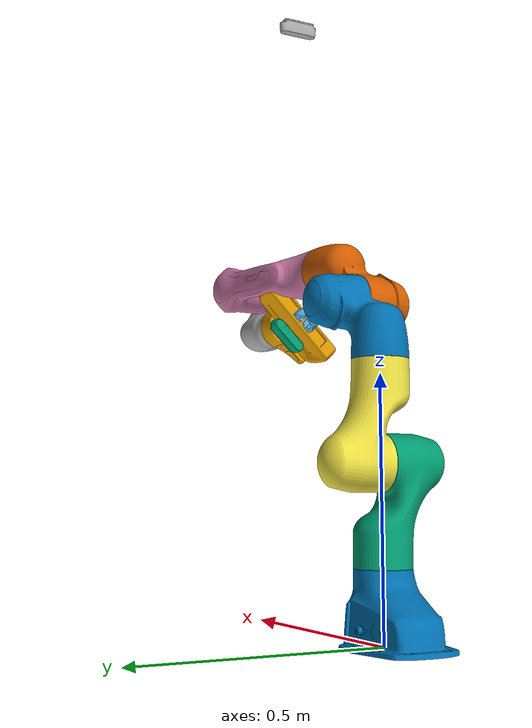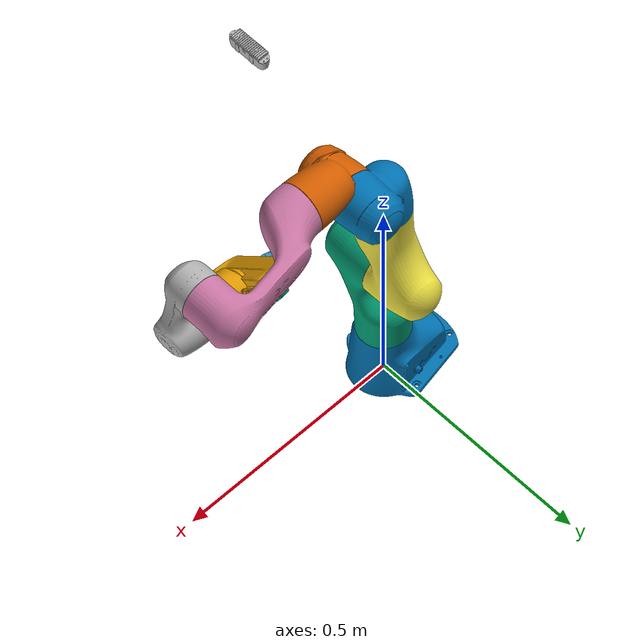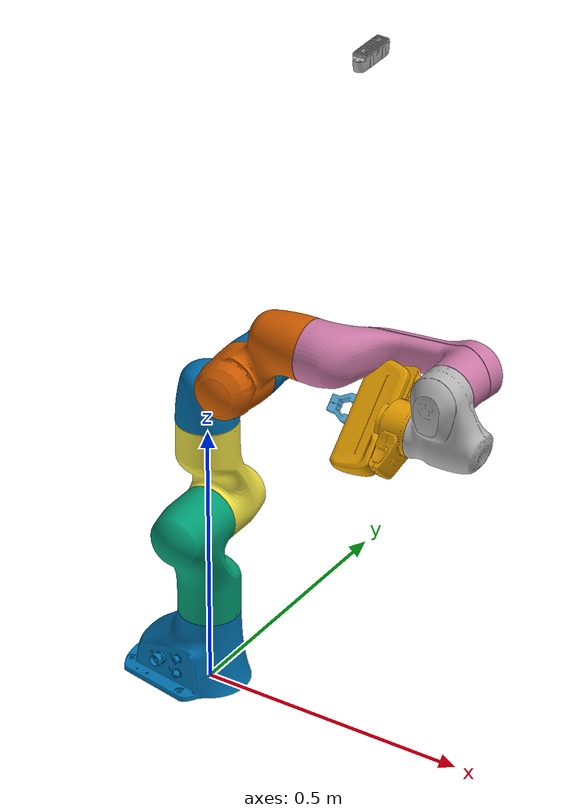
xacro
<?xml version="1.0"?>
<robot xmlns:xacro="http://www.ros.org/wiki/xacro" name="Franka">
    <xacro:arg name="initial_positions_file" default="initial_positions.yaml" />

    <!-- Import Franka urdf file -->
    <xacro:include filename="$(find panda_description)/urdf/Franka.urdf" />

    <!-- Import control_xacro -->
    <xacro:include filename="Franka.ros2_control.xacro" />

    <xacro:Franka_ros2_control name="FakeSystem" initial_positions_file="$(arg initial_positions_file)"/>

</robot>

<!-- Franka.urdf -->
<robot name="Franka">
  <joint name="PandaHandJoint" type="fixed">
    <origin xyz="0.0449043 -0.0000857 0.046555 " rpy="0. 0. -1.553343"/>
    <parent link="Franka_panda_hand"/>
    <child link="Gemini2_hand"/>
  </joint>
  <joint name="joint_Gemini2_hand-Gemini2_hand_Orbbec_Gemini2_camera_ir_left_camera_left_gemini_hand_depth" type="fixed">
    <origin xyz="-0.025 -0. 0.0061398" rpy="3.1415927 0. -3.1415927"/>
    <parent link="Gemini2_hand"/>
    <child link="Gemini2_hand_Orbbec_Gemini2_camera_ir_left_camera_left_gemini_hand_depth"/>
  </joint>
  <joint name="joint_Gemini2_hand-Gemini2_hand_Orbbec_Gemini2_camera_ir_left_camera_left_gemini_hand_rgb" type="fixed">
    <origin xyz="-0.025 -0. 0.0061398" rpy="3.1415927 0. -3.1415927"/>
    <parent link="Gemini2_hand"/>
    <child link="Gemini2_hand_Orbbec_Gemini2_camera_ir_left_camera_left_gemini_hand_rgb"/>
  </joint>
  <joint name="joint_Gemini2_hand-Gemini2_hand_Orbbec_Gemini2_camera_ir_right_camera_right_Stream_ir_right" type="fixed">
    <origin xyz="0.025 -0.0000001 0.0061398" rpy="3.1415927 0. -3.1415927"/>
    <parent link="Gemini2_hand"/>
    <child link="Gemini2_hand_Orbbec_Gemini2_camera_ir_right_camera_right_Stream_ir_right"/>
  </joint>
  <joint name="joint_Gemini2_hand-Gemini2_hand_Orbbec_Gemini2_camera_rgb_camera_rgb_Stream_rgb" type="fixed">
    <origin xyz="0.010989 -0.0000076 0.0076121" rpy="3.1415927 0. -3.1415927"/>
    <parent link="Gemini2_hand"/>
    <child link="Gemini2_hand_Orbbec_Gemini2_camera_rgb_camera_rgb_Stream_rgb"/>
  </joint>
  <joint name="joint_Gemini2_world-Gemini2_world_Orbbec_Gemini2_camera_ir_left_camera_left_Stream_depth" type="fixed">
    <origin xyz="-0.025 0. 0.0061398" rpy="-3.1415927 0. -3.1415927"/>
    <parent link="Gemini2_world"/>
    <child link="Gemini2_world_Orbbec_Gemini2_camera_ir_left_camera_left_Stream_depth"/>
  </joint>
  <joint name="joint_Gemini2_world-Gemini2_world_Orbbec_Gemini2_camera_ir_left_camera_left_Stream_ir_left" type="fixed">
    <origin xyz="-0.025 0. 0.0061398" rpy="-3.1415927 0. 3.1415927"/>
    <parent link="Gemini2_world"/>
    <child link="Gemini2_world_Orbbec_Gemini2_camera_ir_left_camera_left_Stream_ir_left"/>
  </joint>
  <joint name="joint_Gemini2_world-Gemini2_world_Orbbec_Gemini2_camera_ir_right_camera_right_Stream_ir_right" type="fixed">
    <origin xyz="0.025 -0.0000001 0.0061398" rpy="-3.1415927 0. -3.1415927"/>
    <parent link="Gemini2_world"/>
    <child link="Gemini2_world_Orbbec_Gemini2_camera_ir_right_camera_right_Stream_ir_right"/>
  </joint>
  <joint name="joint_Gemini2_world-Gemini2_world_Orbbec_Gemini2_camera_rgb_camera_rgb_Stream_rgb" type="fixed">
    <origin xyz="0.010989 -0.0000076 0.0076121" rpy="-3.1415927 0. -3.1415927"/>
    <parent link="Gemini2_world"/>
    <child link="Gemini2_world_Orbbec_Gemini2_camera_rgb_camera_rgb_Stream_rgb"/>
  </joint>
  <joint name="panda_finger_joint1" type="prismatic">
    <origin xyz="0. -0. 0.0584" rpy="0. -0. 1.5707963"/>
    <parent link="Franka_panda_hand"/>
    <child link="Franka_panda_leftfinger"/>
    <axis xyz="1. 0. 0."/>
    <limit lower="0." upper="0.04" effort="7.1999998" velocity="10."/>
  </joint>
  <joint name="panda_finger_joint2" type="prismatic">
    <origin xyz="0. -0. 0.0584" rpy="-0. 0. -1.5707964"/>
    <parent link="Franka_panda_hand"/>
    <child link="Franka_panda_rightfinger"/>
    <axis xyz="1. 0. 0."/>
    <limit lower="0." upper="0.04" effort="0." velocity="10."/>
  </joint>
  <joint name="panda_hand_joint" type="fixed">
    <origin xyz="-0.0000001 -0.0000001 0. " rpy="1.5707964 -0.7853981 -1.5707964"/>
    <parent link="panda_link8"/>
    <child link="Franka_panda_hand"/>
  </joint>
  <joint name="panda_joint1" type="revolute">
    <origin xyz="-0. 0. 0.333" rpy="0. -1.5707963 0. "/>
    <parent link="Root"/>
    <child link="Franka_panda_link1"/>
    <axis xyz="1. 0. 0."/>
    <limit lower="-2.8973001" upper="2.8973001" effort="100000." velocity="10.0000005"/>
  </joint>
  <joint name="panda_joint2" type="revolute">
    <origin xyz="0.0000003 0.0000001 -0. " rpy="0. 0. 1.5707964"/>
    <parent link="Franka_panda_link1"/>
    <child link="Franka_panda_link2"/>
    <axis xyz="1. 0. 0."/>
    <limit lower="-1.7628" upper="1.7628" effort="100000." velocity="10.0000005"/>
  </joint>
  <joint name="panda_joint3" type="revolute">
    <origin xyz="-0.0000001 -0.3159997 0. " rpy="-0.0000002 -0.0000002 -1.5707958"/>
    <parent link="Franka_panda_link2"/>
    <child link="Franka_panda_link3"/>
    <axis xyz="1. 0. 0."/>
    <limit lower="-2.8973001" upper="2.8973001" effort="100000." velocity="10.0000005"/>
  </joint>
  <joint name="panda_joint4" type="revolute">
    <origin xyz="-0. -0.0000001 -0.0824999" rpy="-0.0000002 0.0000002 -1.5707968"/>
    <parent link="Franka_panda_link3"/>
    <child link="Franka_panda_link4"/>
    <axis xyz="1. 0. 0."/>
    <limit lower="-3.0718" upper="-0.0698" effort="100000." velocity="10.0000005"/>
  </joint>
  <joint name="panda_joint5" type="revolute">
    <origin xyz="0.0000005 0.3839998 0.0824996" rpy="-0.0000003 0.0000001 1.5707946"/>
    <parent link="Franka_panda_link4"/>
    <child link="Franka_panda_link5"/>
    <axis xyz="1. 0. 0."/>
    <limit lower="-2.8973001" upper="2.8973001" effort="100000." velocity="10.0000005"/>
  </joint>
  <joint name="panda_joint6" type="revolute">
    <origin xyz="0.0000005 0.0000003 0.0000002" rpy="0.0000001 0.0000003 -1.5707946"/>
    <parent link="Franka_panda_link5"/>
    <child link="Franka_panda_link6"/>
    <axis xyz="1. 0. 0."/>
    <limit lower="-0.0175" upper="3.7525" effort="100000." velocity="10.0000005"/>
  </joint>
  <joint name="panda_joint7" type="revolute">
    <origin xyz="-0.0000002 -0.0000005 -0.0879998" rpy="-0. 0. -1.5707996"/>
    <parent link="Franka_panda_link6"/>
    <child link="Franka_panda_link7"/>
    <axis xyz="1. 0. 0."/>
    <limit lower="-2.8973001" upper="2.8973001" effort="100000." velocity="10.0000005"/>
  </joint>
  <joint name="panda_joint8" type="fixed">
    <origin xyz="0.1069999 0.0000004 -0.0000002" rpy="3.1415925 0. -3.1415894"/>
    <parent link="Franka_panda_link7"/>
    <child link="panda_link8"/>
  </joint>
  <joint name="world_camera_joint" type="fixed">
    <origin xyz="0.3212462 0. 1.3169613" rpy="3.1415927 0. -1.5707964"/>
    <parent link="Root"/>
    <child link="Gemini2_world"/>
  </joint>
  <link name="Franka_panda_hand">
    <inertial>
      <origin xyz="0. 0. 0." rpy="0. 0. 0."/>
      <mass value="0.5583305"/>
      <inertia ixx="0.0000002" ixy="0." ixz="0." iyy="0.0000001" iyz="0." izz="0.0000002"/>
    </inertial>
    <visual>
      <origin xyz="0. -0. 0." rpy="0. 0. -0.0000002"/>
      <geometry>
        <mesh filename="package://panda_description/meshes/Franka_panda_hand_geometry_panda_hand.obj" scale="1. 1. 1."/>
      </geometry>
    </visual>
    <collision>
      <origin xyz="0. -0. 0." rpy="0. 0. -0.0000002"/>
      <geometry>
        <mesh filename="package://panda_description/meshes/Franka_panda_hand_geometry_panda_hand.obj" scale="1. 1. 1."/>
      </geometry>
    </collision>
  </link>
  <link name="Franka_panda_leftfinger">
    <inertial>
      <origin xyz="0 0 0" rpy="0 0 0"/>
      <mass value="0.014"/>
      <inertia ixx="1.2e-5" ixy="0" ixz="0" iyy="8.0e-6" iyz="0" izz="7.0e-6"/>
    </inertial>
    <visual>
      <origin xyz="-0. -0. -0.0000001" rpy="-0. -0. -1.5707967"/>
      <geometry>
        <mesh filename="package://panda_description/meshes/Franka_panda_leftfinger_geometry_panda_leftfinger.obj" scale="1. 1. 1."/>
      </geometry>
    </visual>
    <collision>
      <origin xyz="-0. -0. -0.0000001" rpy="-0. -0. -1.5707967"/>
      <geometry>
        <mesh filename="package://panda_description/meshes/Franka_panda_leftfinger_geometry_panda_leftfinger.obj" scale="1. 1. 1."/>
      </geometry>
    </collision>
  </link>
  <link name="Franka_panda_link1">
    <inertial>
      <origin xyz="0. 0. 0." rpy="0. 0. 0."/>
      <mass value="2.3599997"/>
      <inertia ixx="0.0000019" ixy="0." ixz="0." iyy="0.0000014" iyz="0." izz="0.0000009"/>
    </inertial>
    <visual>
      <origin xyz="0.0000003 0.0000001 -0. " rpy="0. 1.5707963 0. "/>
      <geometry>
        <mesh filename="package://panda_description/meshes/Franka_panda_link1_geometry_panda_link1.obj" scale="1. 1. 1."/>
      </geometry>
    </visual>
    <collision>
      <origin xyz="0.0000003 0.0000001 -0. " rpy="0. 1.5707963 0. "/>
      <geometry>
        <mesh filename="package://panda_description/meshes/Franka_panda_link1_geometry_panda_link1.obj" scale="1. 1. 1."/>
      </geometry>
    </collision>
  </link>
  <link name="Franka_panda_link2">
    <inertial>
      <origin xyz="0. 0. 0." rpy="0. 0. 0."/>
      <mass value="2.3795187"/>
      <inertia ixx="0.0000019" ixy="0." ixz="0." iyy="0.0000009" iyz="0." izz="0.0000015"/>
    </inertial>
    <visual>
      <origin xyz="-0.0000002 0.0000003 -0. " rpy="-2.4923337 1.570796 -2.4923332"/>
      <geometry>
        <mesh filename="package://panda_description/meshes/Franka_panda_link2_geometry_panda_link2.obj" scale="1. 1. 1."/>
      </geometry>
    </visual>
    <collision>
      <origin xyz="-0.0000002 0.0000003 -0. " rpy="-2.4923337 1.570796 -2.4923332"/>
      <geometry>
        <mesh filename="package://panda_description/meshes/Franka_panda_link2_geometry_panda_link2.obj" scale="1. 1. 1."/>
      </geometry>
    </collision>
  </link>
  <link name="Franka_panda_link3">
    <inertial>
      <origin xyz="0. 0. 0." rpy="0. 0. 0."/>
      <mass value="2.6498823"/>
      <inertia ixx="0.0000013" ixy="0." ixz="0." iyy="0.0000015" iyz="0." izz="0.0000014"/>
    </inertial>
    <visual>
      <origin xyz="-0. -0.0000001 0.0000001" rpy="2.2470412 1.570796 2.2470407"/>
      <geometry>
        <mesh filename="package://panda_description/meshes/Franka_panda_link3_geometry_panda_link3.obj" scale="1. 1. 1."/>
      </geometry>
    </visual>
    <collision>
      <origin xyz="-0. -0.0000001 0.0000001" rpy="2.2470412 1.570796 2.2470407"/>
      <geometry>
        <mesh filename="package://panda_description/meshes/Franka_panda_link3_geometry_panda_link3.obj" scale="1. 1. 1."/>
      </geometry>
    </collision>
  </link>
  <link name="Franka_panda_link4">
    <inertial>
      <origin xyz="0. 0. 0." rpy="0. 0. 0."/>
      <mass value="2.6948018"/>
      <inertia ixx="0.0000013" ixy="0." ixz="0." iyy="0.0000015" iyz="0." izz="0.0000016"/>
    </inertial>
    <visual>
      <origin xyz="-0.0000001 -0.0000001 -0.0000003" rpy="-0.341949 1.570796 -0.3419507"/>
      <geometry>
        <mesh filename="package://panda_description/meshes/Franka_panda_link4_geometry_panda_link4.obj" scale="1. 1. 1."/>
      </geometry>
    </visual>
    <collision>
      <origin xyz="-0.0000001 -0.0000001 -0.0000003" rpy="-0.341949 1.570796 -0.3419507"/>
      <geometry>
        <mesh filename="package://panda_description/meshes/Franka_panda_link4_geometry_panda_link4.obj" scale="1. 1. 1."/>
      </geometry>
    </collision>
  </link>
  <link name="Franka_panda_link5">
    <inertial>
      <origin xyz="0. 0. 0." rpy="0. 0. 0."/>
      <mass value="2.9812818"/>
      <inertia ixx="0.0000033" ixy="0." ixz="0." iyy="0.0000027" iyz="0." izz="0.0000012"/>
    </inertial>
    <visual>
      <origin xyz="0.0000005 0.0000003 0.0000002" rpy="1.2392414 1.570796 1.239243 "/>
      <geometry>
        <mesh filename="package://panda_description/meshes/Franka_panda_link5_geometry_panda_link5.obj" scale="1. 1. 1."/>
      </geometry>
    </visual>
    <collision>
      <origin xyz="0.0000005 0.0000003 0.0000002" rpy="1.2392414 1.570796 1.239243 "/>
      <geometry>
        <mesh filename="package://panda_description/meshes/Franka_panda_link5_geometry_panda_link5.obj" scale="1. 1. 1."/>
      </geometry>
    </collision>
  </link>
  <link name="Franka_panda_link6">
    <inertial>
      <origin xyz="0. 0. 0." rpy="0. 0. 0."/>
      <mass value="1.1285807"/>
      <inertia ixx="0.0000003" ixy="0." ixz="0." iyy="0.0000004" iyz="0." izz="0.0000005"/>
    </inertial>
    <visual>
      <origin xyz="-0.0000002 -0.0000005 0.0000002" rpy="0.0000032 1.5707963 0. "/>
      <geometry>
        <mesh filename="package://panda_description/meshes/Franka_panda_link6_geometry_panda_link6.obj" scale="1. 1. 1."/>
      </geometry>
    </visual>
    <collision>
      <origin xyz="-0.0000002 -0.0000005 0.0000002" rpy="0.0000032 1.5707963 0. "/>
      <geometry>
        <mesh filename="package://panda_description/meshes/Franka_panda_link6_geometry_panda_link6.obj" scale="1. 1. 1."/>
      </geometry>
    </collision>
  </link>
  <link name="Franka_panda_link7">
    <inertial>
      <origin xyz="0. 0. 0." rpy="0. 0. 0."/>
      <mass value="0.4052913"/>
      <inertia ixx="0.0000001" ixy="0." ixz="0." iyy="0.0000001" iyz="0." izz="0.0000001"/>
    </inertial>
    <visual>
      <origin xyz="-0.0000001 0.0000001 -0.0000002" rpy="-0.0000032 1.5707963 0. "/>
      <geometry>
        <mesh filename="package://panda_description/meshes/Franka_panda_link7_geometry_panda_link7.obj" scale="1. 1. 1."/>
      </geometry>
    </visual>
    <collision>
      <origin xyz="-0.0000001 0.0000001 -0.0000002" rpy="-0.0000032 1.5707963 0. "/>
      <geometry>
        <mesh filename="package://panda_description/meshes/Franka_panda_link7_geometry_panda_link7.obj" scale="1. 1. 1."/>
      </geometry>
    </collision>
  </link>
  <link name="Franka_panda_rightfinger">
    <inertial>
      <origin xyz="0 0 0" rpy="0 0 0"/>
      <mass value="0.014"/>
      <inertia ixx="1.2e-5" ixy="0" ixz="0" iyy="8.0e-6" iyz="0" izz="7.0e-6"/>
    </inertial>
    <visual>
      <origin xyz="-0. -0. -0.0000001" rpy="-0. -0. 1.5707964"/>
      <geometry>
        <mesh filename="package://panda_description/meshes/Franka_panda_rightfinger_geometry_panda_rightfinger.obj" scale="1. 1. 1."/>
      </geometry>
    </visual>
    <collision>
      <origin xyz="-0. -0. -0.0000001" rpy="-0. -0. 1.5707964"/>
      <geometry>
        <mesh filename="package://panda_description/meshes/Franka_panda_rightfinger_geometry_panda_rightfinger.obj" scale="1. 1. 1."/>
      </geometry>
    </collision>
  </link>
  <link name="Gemini2_hand">
    <visual>
      <origin xyz="-0.0000628 0.0000002 0.0108373" rpy="0. 0. 0."/>
      <geometry>
        <mesh filename="package://panda_description/meshes/Gemini2_hand_Orbbec_Gemini2_front_cover_solid_solid.obj" scale="1. 1. 1."/>
      </geometry>
    </visual>
    <visual>
      <origin xyz="-0.0000103 -0.0000072 0.0078066" rpy="0. 0. 0."/>
      <geometry>
        <mesh filename="package://panda_description/meshes/Gemini2_hand_Orbbec_Gemini2_camera_ldm_camera_ldm.obj" scale="1. 1. 1."/>
      </geometry>
    </visual>
    <visual>
      <origin xyz="0.010989 -0.0000076 0.0076121" rpy="0. 0. 0."/>
      <geometry>
        <mesh filename="package://panda_description/meshes/Gemini2_hand_Orbbec_Gemini2_camera_rgb_camera_rgb.obj" scale="1. 1. 1."/>
      </geometry>
    </visual>
    <visual>
      <origin xyz="0.0000232 0.0004161 0.0011014" rpy="0. 0. 0."/>
      <geometry>
        <mesh filename="package://panda_description/meshes/Gemini2_hand_Orbbec_Gemini2_gemini2_body_gemini2_body.obj" scale="1. 1. 1."/>
      </geometry>
    </visual>
    <visual>
      <origin xyz="-0.0000043 0.0000468 -0.0149367" rpy="0. 0. 0."/>
      <geometry>
        <mesh filename="package://panda_description/meshes/Gemini2_hand_Orbbec_Gemini2_back_cover_back_cover.obj" scale="1. 1. 1."/>
      </geometry>
    </visual>
    <visual>
      <origin xyz="0.0175 -0.0115044 0.0006957" rpy="0. 0. 0."/>
      <geometry>
        <mesh filename="package://panda_description/meshes/Gemini2_hand_Orbbec_Gemini2_gemini2_foot_left_foot_left.obj" scale="1. 1. 1."/>
      </geometry>
    </visual>
    <visual>
      <origin xyz="-0.0175 -0.0115044 0.0006957" rpy="0. 0. 0."/>
      <geometry>
        <mesh filename="package://panda_description/meshes/Gemini2_hand_Orbbec_Gemini2_gemini2_foot_right_foot_right.obj" scale="1. 1. 1."/>
      </geometry>
    </visual>
    <visual>
      <origin xyz="-0.025 -0. 0.0061398" rpy="0. 0. 0."/>
      <geometry>
        <mesh filename="package://panda_description/meshes/Gemini2_hand_Orbbec_Gemini2_camera_ir_left_camera_left.obj" scale="1. 1. 1."/>
      </geometry>
    </visual>
    <visual>
      <origin xyz="0.025 -0.0000001 0.0061398" rpy="0. 0. 0."/>
      <geometry>
        <mesh filename="package://panda_description/meshes/Gemini2_hand_Orbbec_Gemini2_camera_ir_right_camera_right.obj" scale="1. 1. 1."/>
      </geometry>
    </visual>
  </link>
  <link name="Gemini2_hand_Orbbec_Gemini2_camera_ir_left_camera_left_gemini_hand_depth"/>
  <link name="Gemini2_hand_Orbbec_Gemini2_camera_ir_left_camera_left_gemini_hand_rgb"/>
  <link name="Gemini2_hand_Orbbec_Gemini2_camera_ir_right_camera_right_Stream_ir_right"/>
  <link name="Gemini2_hand_Orbbec_Gemini2_camera_rgb_camera_rgb_Stream_rgb"/>
  <link name="Gemini2_world">
    <visual>
      <origin xyz="-0.0000628 0.0000002 0.0108374" rpy="0. 0. 0."/>
      <geometry>
        <mesh filename="package://panda_description/meshes/Gemini2_world_Orbbec_Gemini2_front_cover_solid_solid.obj" scale="1. 1. 1."/>
      </geometry>
    </visual>
    <visual>
      <origin xyz="-0.0000103 -0.0000072 0.0078066" rpy="0. 0. 0."/>
      <geometry>
        <mesh filename="package://panda_description/meshes/Gemini2_world_Orbbec_Gemini2_camera_ldm_camera_ldm.obj" scale="1. 1. 1."/>
      </geometry>
    </visual>
    <visual>
      <origin xyz="0.010989 -0.0000076 0.0076121" rpy="0. 0. 0."/>
      <geometry>
        <mesh filename="package://panda_description/meshes/Gemini2_world_Orbbec_Gemini2_camera_rgb_camera_rgb.obj" scale="1. 1. 1."/>
      </geometry>
    </visual>
    <visual>
      <origin xyz="0.0000232 0.0004162 0.0011015" rpy="0. 0. 0."/>
      <geometry>
        <mesh filename="package://panda_description/meshes/Gemini2_world_Orbbec_Gemini2_gemini2_body_gemini2_body.obj" scale="1. 1. 1."/>
      </geometry>
    </visual>
    <visual>
      <origin xyz="-0.0000043 0.0000468 -0.0149366" rpy="0. 0. 0."/>
      <geometry>
        <mesh filename="package://panda_description/meshes/Gemini2_world_Orbbec_Gemini2_back_cover_back_cover.obj" scale="1. 1. 1."/>
      </geometry>
    </visual>
    <visual>
      <origin xyz="0.0175 -0.0115044 0.0006957" rpy="0. 0. 0."/>
      <geometry>
        <mesh filename="package://panda_description/meshes/Gemini2_world_Orbbec_Gemini2_gemini2_foot_left_foot_left.obj" scale="1. 1. 1."/>
      </geometry>
    </visual>
    <visual>
      <origin xyz="-0.0175 -0.0115044 0.0006957" rpy="0. 0. 0."/>
      <geometry>
        <mesh filename="package://panda_description/meshes/Gemini2_world_Orbbec_Gemini2_gemini2_foot_right_foot_right.obj" scale="1. 1. 1."/>
      </geometry>
    </visual>
    <visual>
      <origin xyz="-0.025 0. 0.0061398" rpy="0. 0. 0."/>
      <geometry>
        <mesh filename="package://panda_description/meshes/Gemini2_world_Orbbec_Gemini2_camera_ir_left_camera_left.obj" scale="1. 1. 1."/>
      </geometry>
    </visual>
    <visual>
      <origin xyz="0.025 -0.0000001 0.0061398" rpy="0. 0. 0."/>
      <geometry>
        <mesh filename="package://panda_description/meshes/Gemini2_world_Orbbec_Gemini2_camera_ir_right_camera_right.obj" scale="1. 1. 1."/>
      </geometry>
    </visual>
  </link>
  <link name="Gemini2_world_Orbbec_Gemini2_camera_ir_left_camera_left_Stream_depth"/>
  <link name="Gemini2_world_Orbbec_Gemini2_camera_ir_left_camera_left_Stream_ir_left"/>
  <link name="Gemini2_world_Orbbec_Gemini2_camera_ir_right_camera_right_Stream_ir_right"/>
  <link name="Gemini2_world_Orbbec_Gemini2_camera_rgb_camera_rgb_Stream_rgb"/>
  <link name="Root">
    <visual>
      <origin xyz="-0. 0. 0." rpy="0. 0. 0."/>
      <geometry>
        <mesh filename="package://panda_description/meshes/Franka_panda_link0_geometry_panda_link0.obj" scale="1. 1. 1."/>
      </geometry>
    </visual>
    <collision>
      <origin xyz="-0. 0. 0." rpy="0. 0. 0."/>
      <geometry>
        <mesh filename="package://panda_description/meshes/Franka_panda_link0_geometry_panda_link0.obj" scale="1. 1. 1."/>
      </geometry>
    </collision>
  </link>
  <link name="panda_link8">
    <inertial>
      <origin xyz="0. 0. 0." rpy="0. 0. 0."/>
      <mass value="0.1"/>
      <inertia ixx="0.001" ixy="0." ixz="0." iyy="0.001" iyz="0." izz="0.001"/>
    </inertial>
  </link>
</robot>
